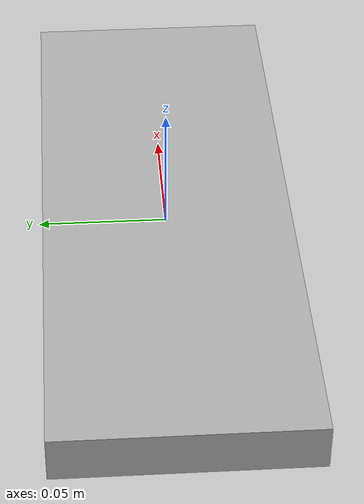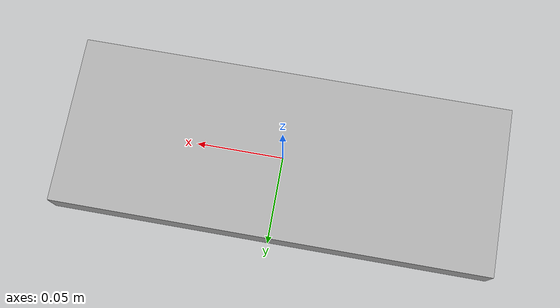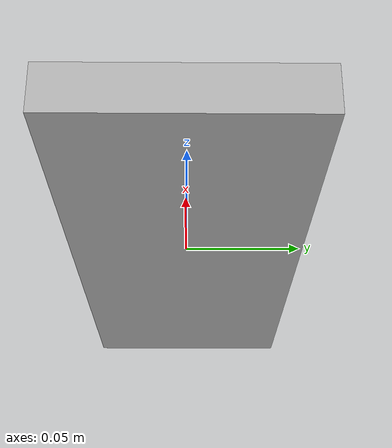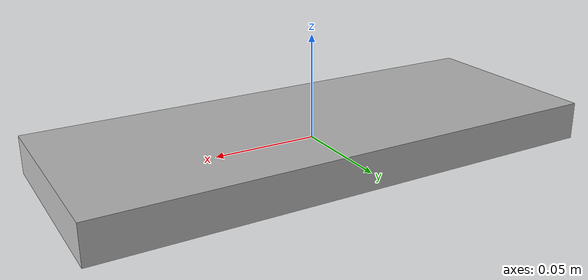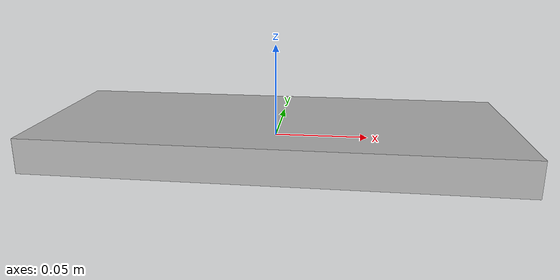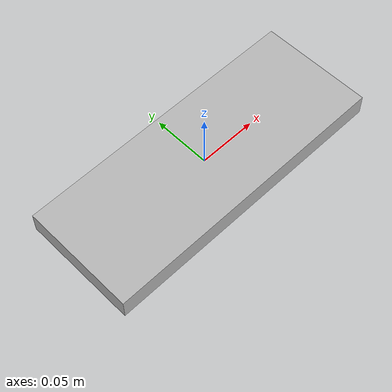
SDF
<?xml version='1.0'?>
<sdf version="1.4">
<model name="ellipta_base">
    <static>true</static>
    <link name="link">
      <pose>0 0 0 0 0 0</pose>
      <collision name="collision">
        <geometry>
          <box>
            <size>0.25 0.097 0.0185</size>
          </box>
        </geometry>
      </collision>
      <visual name="visual">
        <geometry>
          <box>
            <size>0.25 0.097 0.0185</size>
          </box>
        </geometry>
      </visual>
    </link>
  </model>
</sdf>
